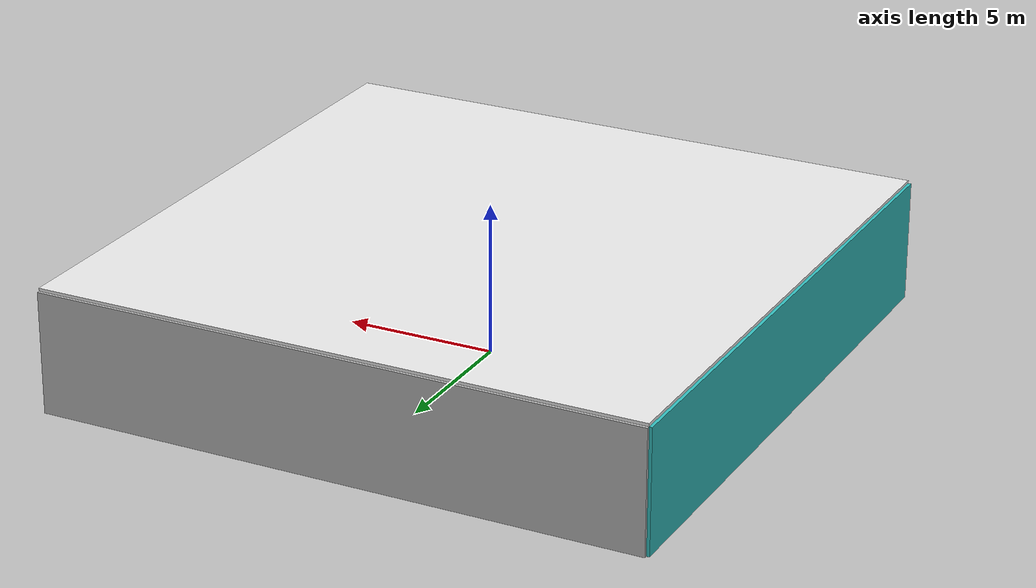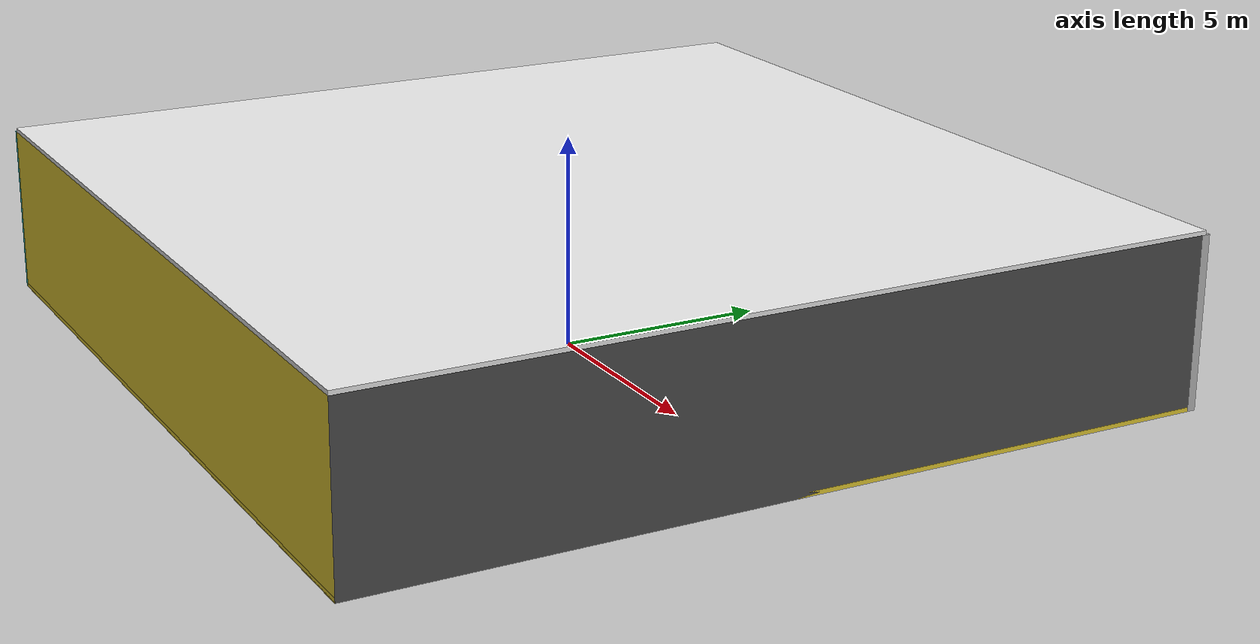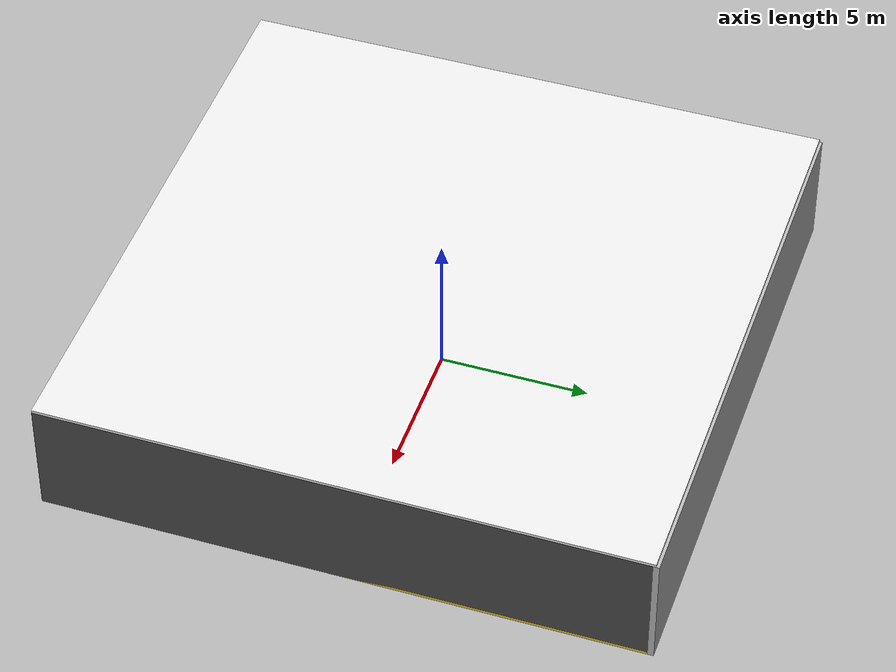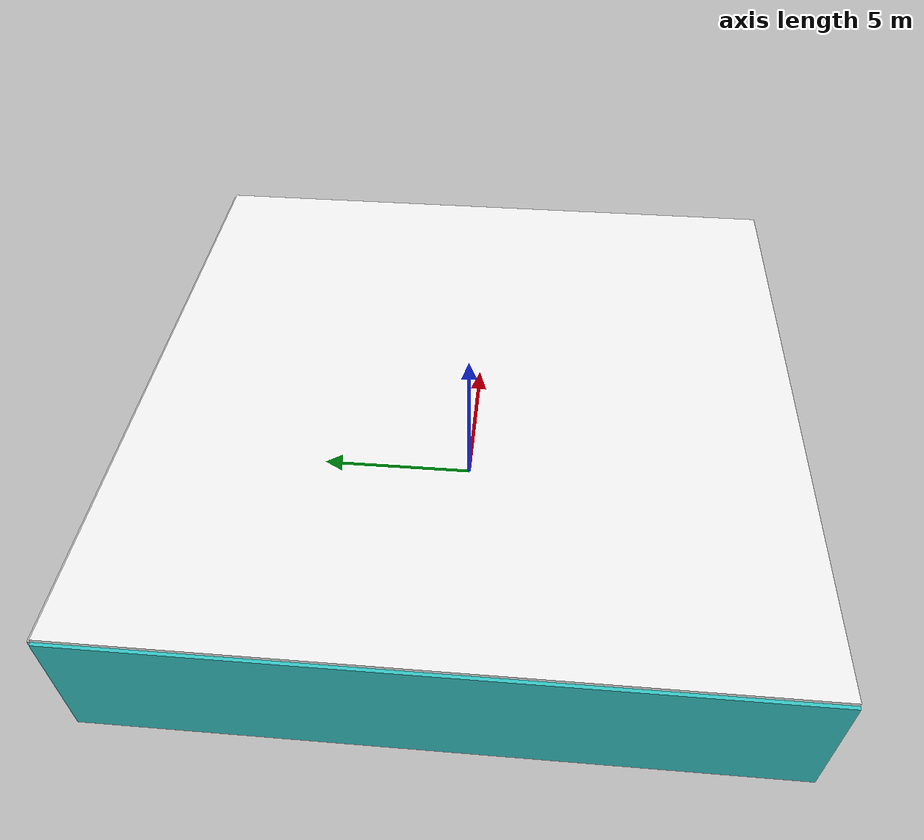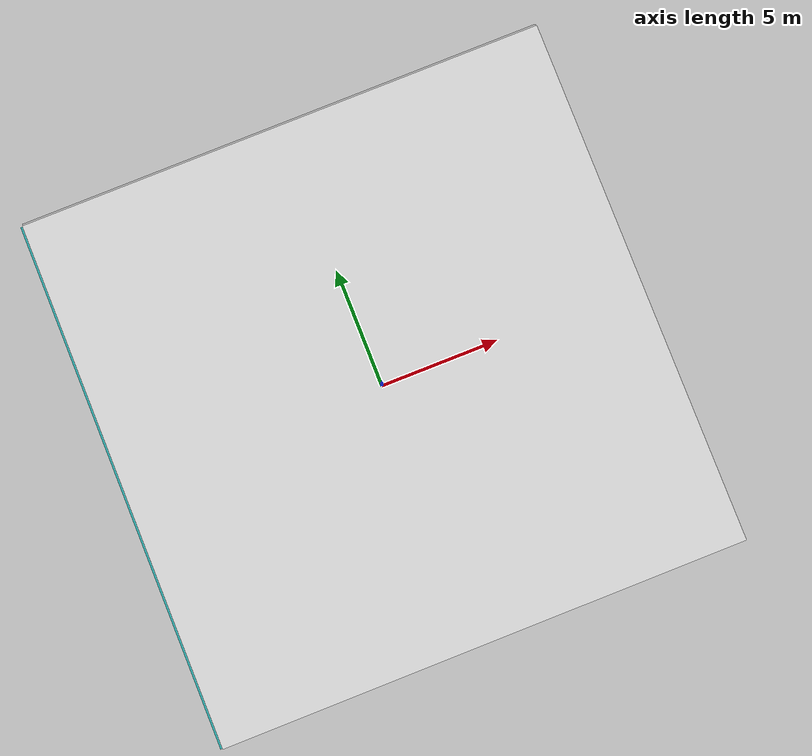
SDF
<sdf version="1.4">
 <world name="default">
  <physics type="ode">
   <max_step_size>0.001</max_step_size>
   <real_time_factor>1</real_time_factor>
   <real_time_update_rate>1000</real_time_update_rate>
   <gravity>0 0 -9.8</gravity>
  </physics>
  <scene><ambient>0.4 0.4 0.4 1</ambient><background>0.7 0.7 0.7 1</background><shadows>1</shadows></scene>
  <model name="Surrounding">
   <static>1</static>
   <link name="Ceiling">
    <collision name="Ceiling_Collision"><geometry><box><size>20 20 0.1</size></box></geometry></collision>
    <visual name="Ceiling_Visual">
     <geometry><box><size>20 20 0.1</size></box></geometry>
     <material>
      <script><uri>file://media/materials/scripts/gazebo.material</uri><name>Gazebo/WhiteGlow</name></script>
     </material>
    </visual>
    <pose>0 0 4.05 0 0 0</pose>
   </link>
   <link name="Wall_South">
    <collision name="Wall_South_Collision">
     <geometry><box><size>20 0 4</size></box></geometry>
     <pose>0 0 2 0 -0 0</pose>
    </collision>
    <visual name="Wall_South_Visual">
     <pose>0 0 2 0 -0 0</pose>
     <geometry><box><size>20 0 4</size></box></geometry>
     <material>
      <script><uri>file://media/materials/scripts/gazebo.material</uri><name>Gazebo/ZincYellow</name></script>
     </material>
    </visual>
    <velocity_decay><linear>0</linear><angular>0</angular></velocity_decay>
    <pose>0 -10 0 0 -0 0</pose>
   </link>
   <link name="Wall_East">
    <collision name="Wall_21_Collision">
     <geometry><box><size>20 0 4</size></box></geometry>
     <pose>0 0 2 0 -0 0</pose>
    </collision>
    <visual name="Wall_21_Visual">
     <pose>0 0 2 0 -0 0</pose>
     <geometry><box><size>20 0 4</size></box></geometry>
     <material>
      <script><uri>file://media/materials/scripts/gazebo.material</uri><name>Gazebo/Road</name></script>
     </material>
    </visual>
    <velocity_decay><linear>0</linear><angular>0</angular></velocity_decay>
    <pose>10 0 0 0 -0 1.5708</pose>
   </link>
   <link name="Wall_North">
    <collision name="Wall_22_Collision">
     <geometry><box><size>20 0.2 4</size></box></geometry>
     <pose>0 0 2 0 -0 0</pose>
    </collision>
    <visual name="Wall_22_Visual">
     <pose>0 0 2 0 -0 0</pose>
     <geometry><box><size>20 0.2 4</size></box></geometry>
     <material>
      <script><uri>file://media/materials/scripts/gazebo.material</uri><name>Gazebo/CloudySky</name></script>
     </material>
    </visual>
    <velocity_decay><linear>0</linear><angular>0</angular></velocity_decay>
    <pose>0 10 0 0 -0 0</pose>
   </link>
   <link name="Wall_West">
    <collision name="Wall_23_Collision">
     <geometry><box><size>20 0.2 4</size></box></geometry>
     <pose>0 0 2 0 -0 0</pose>
    </collision>
    <visual name="Wall_23_Visual">
     <pose>0 0 2 0 -0 0</pose>
     <geometry><box><size>20 0.2 4</size></box></geometry>
     <material>
      <script><uri>file://media/materials/scripts/gazebo.material</uri><name>Gazebo/TurquoiseGlow</name></script>
     </material>
    </visual>
    <velocity_decay><linear>0</linear><angular>0</angular></velocity_decay>
    <pose>-10 0 0 0 0 -1.5708</pose>
   </link>
   <link name="Ground_link">
    <collision name="collision">
     <pose>0 0 .05 0 -0 0</pose>
     <geometry><box><size>20 20 0.1</size></box></geometry>
    </collision>
    <visual name="visual">
     <pose>0 0 .05 0 -0 0</pose>
     <geometry><box><size>20 20 0.1</size></box></geometry>
     <material>
      <script><uri>file://media/materials/scripts/gazebo.material</uri><name>Gazebo/ZincYellow</name></script>
     </material>
    </visual>
   </link>
   <static>1</static>
  </model>
  <spherical_coordinates>
   <surface_model>EARTH_WGS84</surface_model>
   <latitude_deg>0</latitude_deg>
   <longitude_deg>0</longitude_deg>
   <elevation>0</elevation>
   <heading_deg>0</heading_deg>
  </spherical_coordinates>
  <light name="lightball_0" type="diffuse">
   <diffuse>0.8 0.8 0.8 1</diffuse>
   <specular>0.2 0.2 0.2 1</specular>
   <attenuation>
    <range>100</range>
    <constant>0.7</constant>
    <linear>0.01</linear>
    <quadratic>0.001</quadratic>
   </attenuation>
   <direction>-0.5 0.1 -0.9</direction>
   <pose>-0.86952872708 -6.2831164639 1.20995364296 0 0 0</pose>
  </light>
  <light name="lightball_1" type="diffuse">
   <diffuse>0.8 0.8 0.8 1</diffuse>
   <specular>0.2 0.2 0.2 1</specular>
   <attenuation>
    <range>100</range>
    <constant>0.7</constant>
    <linear>0.01</linear>
    <quadratic>0.001</quadratic>
   </attenuation>
   <direction>-0.5 0.1 -0.9</direction>
   <pose>-5.22008879474 2.12132851771 1.82108580557 0 0 0</pose>
  </light>
  <light name="lightball_2" type="diffuse">
   <diffuse>0.8 0.8 0.8 1</diffuse>
   <specular>0.2 0.2 0.2 1</specular>
   <attenuation>
    <range>100</range>
    <constant>0.7</constant>
    <linear>0.01</linear>
    <quadratic>0.001</quadratic>
   </attenuation>
   <direction>-0.5 0.1 -0.9</direction>
   <pose>-4.64767860367 -1.87820301467 1.179509217 0 0 0</pose>
  </light>
  <include>
   <uri>model://textured_shapes</uri>
   <pose>-6.74417495904 -6.79031080091 0 0 0 1.17734296112</pose>
  </include>
  <include><uri>model://cabinet</uri><pose>-3.91504936803 3.80424064957 0 0 0 0.0385369259442</pose></include>
  <include><uri>model://cabinet</uri><pose>7.09466224118 -4.78195684835 0 0 0 1.82708701567</pose></include>
  <include>
   <uri>model://construction_cone</uri>
   <pose>6.79869480918 1.013055902 0 0 0 0.171235328823</pose>
  </include>
 </world>
</sdf>

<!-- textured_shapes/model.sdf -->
<sdf version="1.6">
  <model name="textured_shapes">
    <pose>0 0 0.5 0 0 0</pose>
    <link name="box">
      <pose>0 -1.5 0 0 0 0</pose>
      <collision name="collision">
        <geometry>
          <box>
            <size>1 1 1</size>
          </box>
        </geometry>
      </collision>
      <visual name="visual">
        <geometry>
          <box>
            <size>1 1 1</size>
          </box>
        </geometry>
        <material>
          <script>
            <uri>model://../model_source/models/textured_shapes/materials/scripts</uri>
            <uri>model://../model_source/models/textured_shapes/materials/textures</uri>
            <name>TexturedShape/Squares</name>
          </script>
        </material>
      </visual>
    </link>
    <link name="sphere">
      <collision name="collision">
        <geometry>
          <sphere>
            <radius>0.5</radius>
          </sphere>
        </geometry>
      </collision>
      <visual name="visual">
        <geometry>
          <sphere>
            <radius>0.5</radius>
          </sphere>
        </geometry>
        <material>
          <script>
            <uri>model://../model_source/models/textured_shapes/materials/scripts</uri>
            <uri>model://../model_source/models/textured_shapes/materials/textures</uri>
            <name>TexturedShape/Squares</name>
          </script>
        </material>
      </visual>
    </link>
    <link name="cylinder">
      <pose>0 1.5 0 0 0 0</pose>
      <collision name="collision">
        <geometry>
          <cylinder>
            <radius>0.5</radius>
            <length>1</length>
          </cylinder>
        </geometry>
      </collision>
      <visual name="visual">
        <geometry>
          <cylinder>
            <radius>0.5</radius>
            <length>1</length>
          </cylinder>
        </geometry>
        <material>
          <script>
            <uri>model://../model_source/models/textured_shapes/materials/scripts</uri>
            <uri>model://../model_source/models/textured_shapes/materials/textures</uri>
            <name>TexturedShape/Squares</name>
          </script>
        </material>
      </visual>
    </link>
  </model>
</sdf>

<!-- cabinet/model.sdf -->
<sdf version="1.5">
  <model name="cabinet">
    <static>true</static>
    <link name="cabinet_bottom_plate">
      <inertial>
        <pose>0 0 -1 0 0 0</pose>
        <inertia>
          <ixx>2.050000</ixx>
          <ixy>0</ixy>
          <ixz>0</ixz>
          <iyy>2.050000</iyy>
          <iyz>0</iyz>
          <izz>2.050000</izz>
        </inertia>
        <mass>25.000000</mass>
      </inertial>
      <collision name="cabinet_bottom_plate_geom">
        <pose>0 0 0.010000 0 0 0</pose>
        <geometry>
          <box>
            <size>0.450000 0.450000 0.020000</size>
          </box>
        </geometry>
      </collision>
      <visual name="cabinet_bottom_plate_geom_visual">
        <pose>0 0 0.010000 0 0 0</pose>
        <geometry>
          <box>
            <size>0.450000 0.450000 0.020000</size>
          </box>
        </geometry>
        <material>
          <script>
            <uri>model://media/materials/scripts/gazebo.material</uri>
            <name>Gazebo/Wood</name>
          </script>
        </material>
      </visual>
      <collision name="cabinet_bottom_plate_geom_cabinet_back_plate">
        <pose>0.235000 0 0.510000 0 0 0</pose>
        <geometry>
          <box>
            <size>0.020000 0.450000 1.020000</size>
          </box>
        </geometry>
      </collision>
      <visual name="cabinet_bottom_plate_geom_cabinet_back_plate_visual">
        <pose>0.235000 0 0.510000 0 0 0</pose>
        <geometry>
          <box>
            <size>0.020000 0.450000 1.020000</size>
          </box>
        </geometry>
        <material>
          <script>
            <uri>model://media/materials/scripts/gazebo.material</uri>
            <name>Gazebo/Wood</name>
          </script>
        </material>
      </visual>
      <collision name="cabinet_bottom_plate_geom_cabinet_left_plate">
        <pose>0 0.235000 0.510000 0 0 0</pose>
        <geometry>
          <box>
            <size>0.450000 0.020000 1.020000</size>
          </box>
        </geometry>
      </collision>
      <visual name="cabinet_bottom_plate_geom_cabinet_left_plate_visual">
        <pose>0 0.235000 0.510000 0 0 0</pose>
        <geometry>
          <box>
            <size>0.450000 0.020000 1.020000</size>
          </box>
        </geometry>
        <material>
          <script>
            <uri>model://media/materials/scripts/gazebo.material</uri>
            <name>Gazebo/Wood</name>
          </script>
        </material>
      </visual>
      <collision name="cabinet_bottom_plate_geom_cabinet_middle_plate">
        <pose>0 0 0.510000 0 0 0</pose>
        <geometry>
          <box>
            <size>0.450000 0.450000 0.020000</size>
          </box>
        </geometry>
      </collision>
      <visual name="cabinet_bottom_plate_geom_cabinet_middle_plate_visual">
        <pose>0 0 0.510000 0 0 0</pose>
        <geometry>
          <box>
            <size>0.450000 0.450000 0.020000</size>
          </box>
        </geometry>
        <material>
          <script>
            <uri>model://media/materials/scripts/gazebo.material</uri>
            <name>Gazebo/Wood</name>
          </script>
        </material>
      </visual>
      <collision name="cabinet_bottom_plate_geom_cabinet_right_plate">
        <pose>0 -0.235000 0.510000 0 0 0</pose>
        <geometry>
          <box>
            <size>0.450000 0.020000 1.020000</size>
          </box>
        </geometry>
      </collision>
      <visual name="cabinet_bottom_plate_geom_cabinet_right_plate_visual">
        <pose>0 -0.235000 0.510000 0 0 0</pose>
        <geometry>
          <box>
            <size>0.450000 0.020000 1.020000</size>
          </box>
        </geometry>
        <material>
          <script>
            <uri>model://media/materials/scripts/gazebo.material</uri>
            <name>Gazebo/Wood</name>
          </script>
        </material>
      </visual>
      <collision name="cabinet_bottom_plate_geom_cabinet_top_plate">
        <pose>0 0 1.010000 0 0 0</pose>
        <geometry>
          <box>
            <size>0.450000 0.450000 0.020000</size>
          </box>
        </geometry>
      </collision>
      <visual name="cabinet_bottom_plate_geom_cabinet_top_plate_visual">
        <pose>0 0 1.010000 0 0 0</pose>
        <geometry>
          <box>
            <size>0.450000 0.450000 0.020000</size>
          </box>
        </geometry>
        <material>
          <script>
            <uri>model://media/materials/scripts/gazebo.material</uri>
            <name>Gazebo/Wood</name>
          </script>
        </material>
      </visual>
    </link>
  </model>
</sdf>

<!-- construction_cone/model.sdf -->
<sdf version="1.5">
  <model name="Construction Cone">
    <link name="link">
      <collision name="collision">
        <geometry>
          <mesh>
            <scale>10 10 10</scale>
            <uri>file://isr-testbed/construction_cone/meshes/construction_cone.dae</uri>
          </mesh>
        </geometry>
      </collision>
      <visual name="visual">
        <geometry>
          <mesh>
            <scale>10 10 10</scale>
            <uri>file://isr-testbed/construction_cone/meshes/construction_cone.dae</uri>
          </mesh>
        </geometry>
      </visual>
    </link>
  </model>
</sdf>
